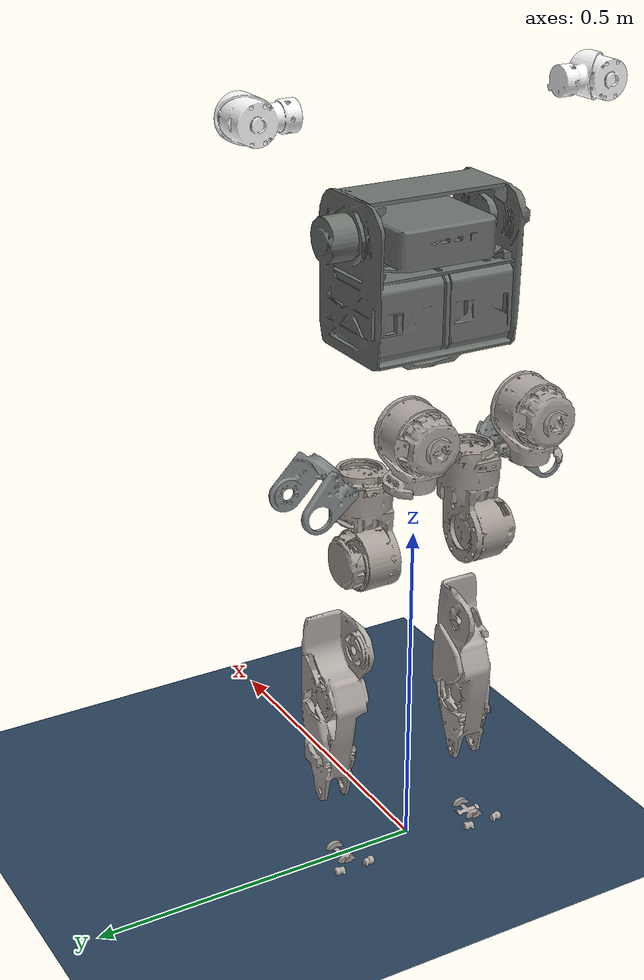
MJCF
<mujoco model="kuavo scene">
  <include file="biped_s30.xml"/>

  <statistic center="0 0 1" extent="1.8"/>

  <visual>
    <headlight diffuse="0.6 0.6 0.6" ambient="0.3 0.3 0.3" specular="0 0 0"/>
    <rgba haze="0.15 0.25 0.35 1"/>
    <global azimuth="160" elevation="-20"/>
  </visual>

  <asset>
    <texture type="skybox" builtin="gradient" rgb1="0.3 0.5 0.7" rgb2="0 0 0" width="512" height="3072"/>
    <texture type="2d" name="groundplane" builtin="checker" mark="edge" rgb1="0.2 0.3 0.4" rgb2="0.1 0.2 0.3"
      markrgb="0.8 0.8 0.8" width="300" height="300"/>
    <material name="groundplane" texture="groundplane" texuniform="true" texrepeat="5 5" reflectance="0.2"/>
  </asset>

  <worldbody>
    <light pos="0 0 3.5" dir="0 0 -1" directional="true"/>
    <geom name="floor" size="0 0 0.05" type="plane" material="groundplane"/>
  </worldbody>

  <keyframe>
    <key name="home"
      qpos="
    0 0 0.98
    1 0 0 0
    0 0 0 0 0 0
    0 0 0 0 0 0
    0 0"/>
  </keyframe>

</mujoco>

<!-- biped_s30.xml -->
<mujoco model="biped_s30">
  <compiler angle="radian" meshdir="../meshes/"/>
  <size njmax="500" nconmax="100" />
  <asset>
    <texture type="skybox" builtin="gradient" rgb1="0.4 0.6 0.8" width="128" height="128"/>
    <texture name="grid" type="2d" builtin="checker" rgb1=".1 .2 .3" rgb2=".2 .3 .4" width="300" height="300"/>
    <material name="grid" texture="grid" texrepeat="8 8" reflectance=".1"/>
    <mesh name="torso" file="torso.STL"/>
    <mesh name="l_leg_roll" file="l_leg_roll.STL"/>
    <mesh name="l_leg_yaw" file="l_leg_yaw.STL"/>
    <mesh name="l_leg_pitch" file="l_leg_pitch.STL"/>
    <mesh name="l_knee" file="l_knee.STL"/>
    <mesh name="l_foot_pitch" file="l_foot_pitch.STL"/>
    <mesh name="l_foot_roll" file="l_foot_roll.STL"/>
    <mesh name="r_leg_roll" file="r_leg_roll.STL"/>
    <mesh name="r_leg_yaw" file="r_leg_yaw.STL"/>
    <mesh name="r_leg_pitch" file="r_leg_pitch.STL"/>
    <mesh name="r_knee" file="r_knee.STL"/>
    <mesh name="r_foot_pitch" file="r_foot_pitch.STL"/>
    <mesh name="r_foot_roll" file="r_foot_roll.STL"/>
    <mesh name="l_arm_pitch" file="l_arm_pitch.STL"/>
    <mesh name="l_arm_roll" file="l_arm_roll.STL"/>
    <mesh name="l_arm_yaw" file="l_arm_yaw.STL"/>
    <mesh name="l_forearm_pitch" file="l_forearm_pitch.STL"/>
    <mesh name="l_hand_yaw" file="l_hand_yaw.STL"/>
    <mesh name="l_hand_pitch" file="l_hand_pitch.STL"/>
    <mesh name="l_hand_roll" file="l_hand_roll.STL"/>
    <mesh name="r_arm_pitch" file="r_arm_pitch.STL"/>
    <mesh name="r_arm_roll" file="r_arm_roll.STL"/>
    <mesh name="r_arm_yaw" file="r_arm_yaw.STL"/>
    <mesh name="r_forearm_pitch" file="r_forearm_pitch.STL"/>
    <mesh name="r_hand_yaw" file="r_hand_yaw.STL"/>
    <mesh name="r_hand_pitch" file="r_hand_pitch.STL"/>
    <mesh name="r_hand_roll" file="r_hand_roll.STL"/>
    <mesh name="neck_motor" file="neck_motor.STL" />
    <mesh name="head" file="head.STL" />
    <mesh name="camera" file="camera.STL" />
  </asset>
  <worldbody>
    <body name="base_link" pos="0 0 0.78">
      <freejoint/>
      <inertial pos="0.0 0.0 0.12722577" quat="1.00000  0.00000  0.00002 -0.00003" mass="26.39683" diaginertia="0.62588371 0.56247677 0.20014604" />
      <geom type="mesh" contype="0" conaffinity="0" group="1" rgba="0.43137 0.45098 0.43137 1" mesh="torso"/>
      <geom type="mesh" rgba="0.75294 0.75294 0.75294 1" mesh="torso" />
      <site name="imu" pos="0 0 0"/>
      <body name="leg_l1_link" pos="-0.139 0.088087 -0.065549">
        <inertial pos="0.0661423 -1.19e-06 -0.00862806" quat="-0.00036611 0.685786 0.000388541 0.727803" mass="1.53801" diaginertia="0.00367033 0.00282649 0.00188822"/>
        <joint name="leg_l1_joint" pos="0 0 0" axis="1 0 0" range="-0.31 0.66" actuatorfrcrange="-85 85" damping='0.2' />
        <geom type="mesh" contype="0" conaffinity="0" group="1" density="0" rgba="0.6902 0.65882 0.63922 1" mesh="l_leg_roll"/>
        <body name="leg_l2_link" pos="0.1365 -0.0010866 -0.033901">
          <inertial pos="0 0.046104 -0.132561" quat="0.406465 0.913665 0.00146124 -0.000707497" mass="1.60097" diaginertia="0.0069836 0.00577369 0.00365952"/>
          <joint name="leg_l2_joint" pos="0 0 0" axis="0 0 1" range="-0.52 1.04" actuatorfrcrange="-60 60" damping='0.2' />
          <geom type="mesh" contype="0" conaffinity="0" group="1" density="0" rgba="0.65098 0.61961 0.58824 1" mesh="l_leg_yaw"/>
          <body name="leg_l3_link" pos="0 0.094 -0.09">
            <inertial pos="-0.00644903 -0.0981356 -0.0535761" quat="0.680972 -0.0265435 0.0402869 0.730718" mass="2.46657" diaginertia="0.0233349 0.022619 0.00397939"/>
            <joint name="leg_l3_joint" pos="0 0 0" axis="0 1 0" range="-1.83 1.04" actuatorfrcrange="-85 85" damping='0.2' />
            <geom type="mesh" contype="0" conaffinity="0" group="1" density="0" rgba="0.52941 0.54902 0.54902 1" mesh="l_leg_pitch"/>
            <body name="leg_l4_link" pos="0.004136 -0.06635 -0.24997">
              <inertial pos="0.00080045 -4.225e-05 -0.120497" quat="0.708481 -0.000629386 -0.0108666 0.705646" mass="1.62912" diaginertia="0.013595 0.0134393 0.000915523"/>
              <joint name="leg_l4_joint" pos="0 0 0" axis="0 1 0" range="0 2.18" actuatorfrcrange="-85 85" damping='0.2' />
              <geom type="mesh" contype="0" conaffinity="0" group="1" density="0" rgba="0.68627 0.65882 0.63922 1" mesh="l_knee"/>
              <body name="leg_l5_link" pos="0 -0.0022 -0.346">
                <inertial pos="0 -0.0209998 0" quat="0.5 0.5 -0.5 0.5" mass="0.0544445" diaginertia="7.28e-06 4.11e-06 4.11e-06"/>
                <joint name="leg_l5_joint" pos="0 0 0" axis="0 1 0" range="-0.61 0.52" actuatorfrcrange="-36 36" damping='0.2'/>
                <geom type="mesh" contype="0" conaffinity="0" group="1" density="0" rgba="0.6902 0.65882 0.63922 1" mesh="l_foot_pitch"/>
                <body name="leg_l6_link">
                  <inertial pos="-0.0355077 9.71466e-06 -0.0272597" quat="-0.000229205 0.628048 -0.000281424 0.778175" mass="0.470217" diaginertia="0.00146681 0.00133526 0.000364416"/>
                  <joint name="leg_l6_joint" pos="0 0 0" axis="1 0 0" range="-0.61 0.52" actuatorfrcrange="-36 36" damping='0.2' />
                  <geom type="mesh" contype="0" conaffinity="0" group="1" density="0" rgba="0.6902 0.65882 0.63922 1" mesh="l_foot_roll"/>
                  <geom size="0.005" pos="-0.09 0.05 -0.0465" contype="0" conaffinity="0" group="1" density="0" rgba="0.6902 0.65882 0.63922 1"/>
                  <geom size="0.005" pos="-0.09 0.05 -0.0465" rgba="0.6902 0.65882 0.63922 1"/>
                  <geom size="0.005" pos="-0.09 -0.05 -0.0465" contype="0" conaffinity="0" group="1" density="0" rgba="0.6902 0.65882 0.63922 1"/>
                  <geom size="0.005" pos="-0.09 -0.05 -0.0465" rgba="0.6902 0.65882 0.63922 1"/>
                  <geom size="0.005" pos="0.15 0.05 -0.0465" contype="0" conaffinity="0" group="1" density="0" rgba="0.6902 0.65882 0.63922 1"/>
                  <geom size="0.005" pos="0.15 0.05 -0.0465" rgba="0.6902 0.65882 0.63922 1"/>
                  <geom size="0.005" pos="0.15 -0.05 -0.0465" contype="0" conaffinity="0" group="1" density="0" rgba="0.6902 0.65882 0.63922 1"/>
                  <geom size="0.005" pos="0.15 -0.05 -0.0465" rgba="0.6902 0.65882 0.63922 1"/>
                  <geom type="box" size="0.12 0.05 0.005" pos="0.03 0 -0.0465" contype="1" conaffinity="1" group="1" density="0" rgba="0.1 0.6 0.1 0.2"/>
                </body>
              </body>
            </body>
          </body>
        </body>
      </body>
      <body name="leg_r1_link" pos="-0.139 -0.088087 -0.065549">
        <inertial pos="0.0661423 1.19e-06 -0.00862806" quat="0.000366114 0.685786 -0.000388545 0.727803" mass="1.53801" diaginertia="0.00367033 0.00282648 0.00188822"/>
        <joint name="leg_r1_joint" pos="0 0 0" axis="1 0 0" range="-0.6629 0.314" actuatorfrcrange="-85 85" damping='0.2' />
        <geom type="mesh" contype="0" conaffinity="0" group="1" density="0" rgba="0.6902 0.65882 0.63922 1" mesh="r_leg_roll"/>
        <body name="leg_r2_link" pos="0.1365 0.0010866 -0.033901">
          <inertial pos="4.661e-05 -0.0461036 -0.132574" quat="0.928414 0.371529 0.00156279 -0.00347123" mass="1.60097" diaginertia="0.00520443 0.00457962 0.00331423"/>
          <joint name="leg_r2_joint" pos="0 0 0" axis="0 0 1" range="-1.04 0.52" actuatorfrcrange="-60 60" damping='0.2' />
          <geom type="mesh" contype="0" conaffinity="0" group="1" density="0" rgba="0.65098 0.619608 0.588235 1" mesh="r_leg_yaw"/>
          <body name="leg_r3_link" pos="0 -0.094 -0.09">
            <inertial pos="-0.00644903 0.0981356 -0.0535761" quat="0.782763 0.0509103 -0.043864 0.618681" mass="2.46657" diaginertia="0.0236078 0.0224895 0.00397676"/>
            <joint name="leg_r3_joint" pos="0 0 0" axis="0 1 0" range="-1.83 1.04" actuatorfrcrange="-85 85" damping='0.2' />
            <geom type="mesh" contype="0" conaffinity="0" group="1" density="0" rgba="0.529412 0.54902 0.54902 1" mesh="r_leg_pitch"/>
            <body name="leg_r4_link" pos="0.004136 0.06635 -0.24997">
              <inertial pos="0.00080045 4.225e-05 -0.120497" quat="0.705646 -0.0108666 -0.000629386 0.708481" mass="1.62912" diaginertia="0.013595 0.0134393 0.000915523"/>
              <joint name="leg_r4_joint" pos="0 0 0" axis="0 1 0" range="0 2.18" actuatorfrcrange="-85 85" damping='0.2' />
              <geom type="mesh" contype="0" conaffinity="0" group="1" density="0" rgba="0.686275 0.658824 0.639216 1" mesh="r_knee"/>
              <body name="leg_r5_link" pos="0 0.0022 -0.346">
                <inertial pos="0 0.0210002 0" quat="0.5 0.5 -0.5 0.5" mass="0.0544445" diaginertia="7.28e-06 4.11e-06 4.11e-06"/>
                <joint name="leg_r5_joint" pos="0 0 0" axis="0 1 0" range="-0.61 0.52" actuatorfrcrange="-36 36" damping='0.2' />
                <geom type="mesh" contype="0" conaffinity="0" group="1" density="0" rgba="0.690196 0.658824 0.639216 1" mesh="r_foot_pitch"/>
                <body name="leg_r6_link">
                  <inertial pos="-0.0355078 -9.65506e-06 -0.0272597" quat="0.00022933 0.628048 0.00028129 0.778175" mass="0.470216" diaginertia="0.0014668 0.00133526 0.000364406"/>
                  <joint name="leg_r6_joint" pos="0 0 0" axis="1 0 0" range="-0.52 0.61" actuatorfrcrange="-36 36" damping='0.2' />
                  <geom type="mesh" contype="0" conaffinity="0" group="1" density="0" rgba="0.690196 0.658824 0.639216 1" mesh="r_foot_roll"/>
                  <geom size="0.005" pos="-0.09 0.05 -0.0465" contype="0" conaffinity="0" group="1" density="0" rgba="0.690196 0.658824 0.639216 1"/>
                  <geom size="0.005" pos="-0.09 0.05 -0.0465" rgba="0.690196 0.658824 0.639216 1"/>
                  <geom size="0.005" pos="-0.09 -0.05 -0.0465" contype="0" conaffinity="0" group="1" density="0" rgba="0.690196 0.658824 0.639216 1"/>
                  <geom size="0.005" pos="-0.09 -0.05 -0.0465" rgba="0.690196 0.658824 0.639216 1"/>
                  <geom size="0.005" pos="0.15 0.05 -0.0465" contype="0" conaffinity="0" group="1" density="0" rgba="0.690196 0.658824 0.639216 1"/>
                  <geom size="0.005" pos="0.15 0.05 -0.0465" rgba="0.690196 0.658824 0.639216 1"/>
                  <geom size="0.005" pos="0.15 -0.05 -0.0465" contype="0" conaffinity="0" group="1" density="0" rgba="0.690196 0.658824 0.639216 1"/>
                  <geom size="0.005" pos="0.15 -0.05 -0.0465" rgba="0.690196 0.658824 0.639216 1"/>
                  <geom type="box" size="0.12 0.05 0.005" pos="0.03 0 -0.0465" contype="1" conaffinity="1" group="1" density="0" rgba="0.1 0.6 0.1 0.2"/>
                </body>
              </body>
            </body>
          </body>
        </body>
      </body>
      <body name="zarm_l1_link" pos="-0.0175476 0.2547 0.3245">
        <inertial pos="0.0146835 -0.0166604 -6.82857e-05" quat="0.696586 0.712206 -0.0625859 -0.0601207" mass="0.794" diaginertia="0.000271947 0.000196224 0.000121256"/>
        <joint name="zarm_l1_joint" pos="0 0 0" axis="0 1 0" range="-2.0933 0.5233" actuatorfrcrange="-60 60" damping="0.2" />
        <geom type="mesh" contype="0" conaffinity="0" group="1" density="0" rgba="1 1 1 1" mesh="l_arm_pitch"/>
      </body>
      <body name="zarm_r1_link" pos="-0.0175476 -0.2547 0.3245">
        <inertial pos="0.0146744 0.0168298 -8.16712e-05" quat="0.712375 0.696324 0.0605536 0.0631598" mass="0.794" diaginertia="0.000271946 0.000196219 0.000121103"/>
        <joint name="zarm_r1_joint" pos="0 0 0" axis="0 1 0" range="-2.0933 0.5233" actuatorfrcrange="-60 60" damping="0.2" />
        <geom type="mesh" contype="0" conaffinity="0" group="1" density="0" rgba="1 1 1 1" mesh="r_arm_pitch"/>
      </body>

    </body>
  </worldbody>
  <actuator>
        <motor gear="1" joint="leg_l1_joint" name="leg_l1_motor" ctrllimited="true"  ctrlrange='-150 150'/>
        <motor gear="1" joint="leg_l2_joint" name="leg_l2_motor" ctrllimited="true"  ctrlrange='-150 150'/>
        <motor gear="1" joint="leg_l3_joint" name="leg_l3_motor" ctrllimited="true"  ctrlrange='-200 200'/>
        <motor gear="1" joint="leg_l4_joint" name="leg_l4_motor" ctrllimited="true"  ctrlrange='-200 200'/>
        <motor gear="1" joint="leg_l5_joint" name="leg_l5_motor" ctrllimited="true"  ctrlrange='-90 90'/>
        <motor gear="1" joint="leg_l6_joint" name="leg_l6_motor" ctrllimited="true"  ctrlrange='-90 90'/>

        <motor gear="1" joint="leg_r1_joint" name="leg_r1_motor" ctrllimited="true"  ctrlrange='-150 150'/>
        <motor gear="1" joint="leg_r2_joint" name="leg_r2_motor" ctrllimited="true"  ctrlrange='-150 150'/>
        <motor gear="1" joint="leg_r3_joint" name="leg_r3_motor" ctrllimited="true"  ctrlrange='-200 200'/>
        <motor gear="1" joint="leg_r4_joint" name="leg_r4_motor" ctrllimited="true"  ctrlrange='-200 200'/>
        <motor gear="1" joint="leg_r5_joint" name="leg_r5_motor" ctrllimited="true"  ctrlrange='-90 90'/>
        <motor gear="1" joint="leg_r6_joint" name="leg_r6_motor" ctrllimited="true"  ctrlrange='-90 90'/>

        <motor gear="1" joint="zarm_l1_joint" name="zarm_l1_motor" ctrllimited="true"  ctrlrange='-150 150'/>

        <motor gear="1" joint="zarm_r1_joint" name="zarm_r1_motor" ctrllimited="true"  ctrlrange='-150 150'/>

  </actuator>
  <sensor>
      <accelerometer name="BodyAcc" site="imu"/>
      <velocimeter name="BodyVel" site="imu"/>
      <gyro name="BodyGyro" site="imu"/>
      <framepos name="BodyPos" objtype="site" objname="imu"/>
      <framequat name="BodyQuat" objtype="site" objname="imu"/>

      <jointpos name="leg_l1_pos" joint="leg_l1_joint"/>
      <jointpos name="leg_l2_pos" joint="leg_l2_joint"/>
      <jointpos name="leg_l3_pos" joint="leg_l3_joint"/>
      <jointpos name="leg_l4_pos" joint="leg_l4_joint"/>
      <jointpos name="leg_l5_pos" joint="leg_l5_joint"/>
      <jointpos name="leg_l6_pos" joint="leg_l6_joint"/>

      <jointpos name="leg_r1_pos" joint="leg_r1_joint"/>
      <jointpos name="leg_r2_pos" joint="leg_r2_joint"/>
      <jointpos name="leg_r3_pos" joint="leg_r3_joint"/>
      <jointpos name="leg_r4_pos" joint="leg_r4_joint"/>
      <jointpos name="leg_r5_pos" joint="leg_r5_joint"/>
      <jointpos name="leg_r6_pos" joint="leg_r6_joint"/>

      <jointpos name="zarm_l1_pos" joint="zarm_l1_joint"/>

      <jointpos name="zarm_r1_pos" joint="zarm_r1_joint"/>

      <jointvel name="leg_l1_vel" joint="leg_l1_joint"/>
      <jointvel name="leg_l2_vel" joint="leg_l2_joint"/>
      <jointvel name="leg_l3_vel" joint="leg_l3_joint"/>
      <jointvel name="leg_l4_vel" joint="leg_l4_joint"/>
      <jointvel name="leg_l5_vel" joint="leg_l5_joint"/>
      <jointvel name="leg_l6_vel" joint="leg_l6_joint"/>

      <jointvel name="leg_r1_vel" joint="leg_r1_joint"/>
      <jointvel name="leg_r2_vel" joint="leg_r2_joint"/>
      <jointvel name="leg_r3_vel" joint="leg_r3_joint"/>
      <jointvel name="leg_r4_vel" joint="leg_r4_joint"/>
      <jointvel name="leg_r5_vel" joint="leg_r5_joint"/>
      <jointvel name="leg_r6_vel" joint="leg_r6_joint"/>

      <jointvel name="zarm_l1_vel" joint="zarm_l1_joint"/>

      <jointvel name="zarm_r1_vel" joint="zarm_r1_joint"/>

  </sensor>
</mujoco>
